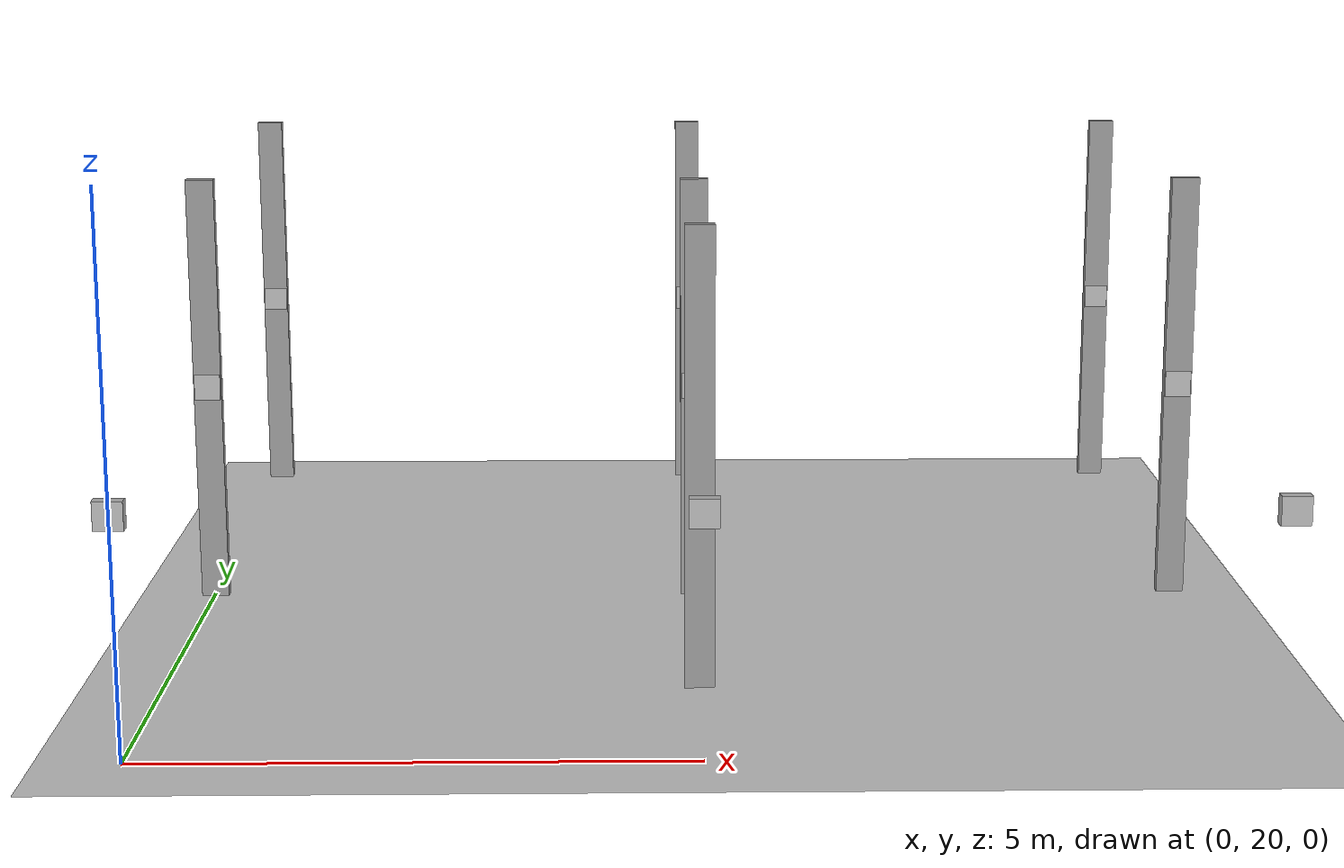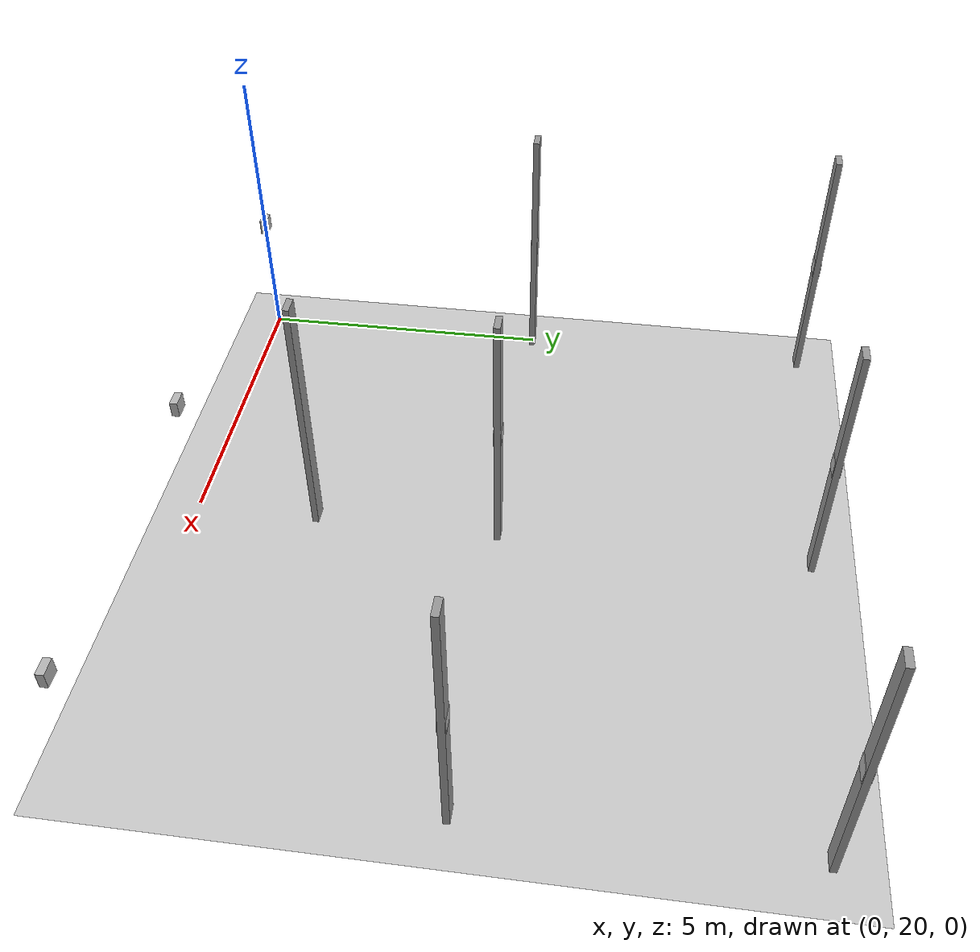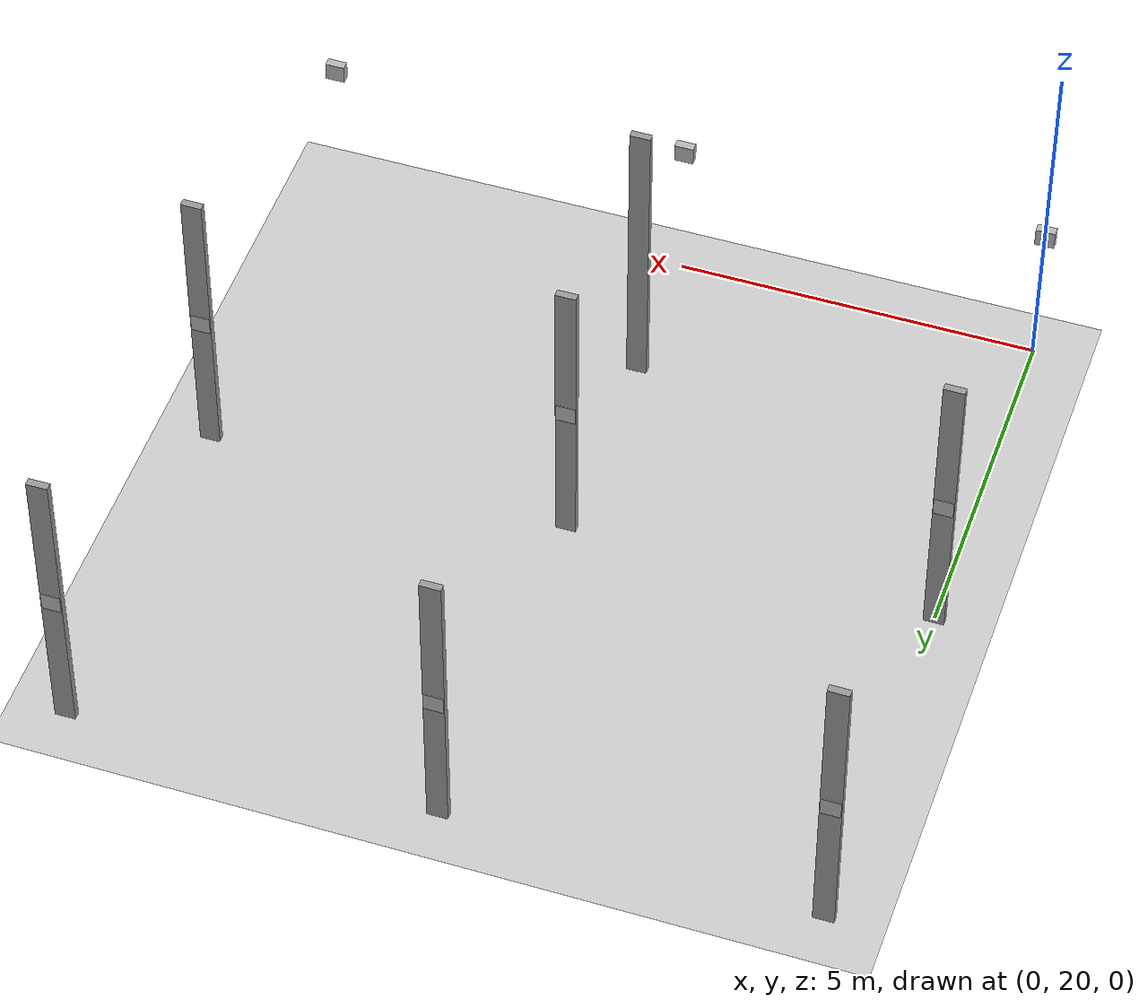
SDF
<sdf version="1.7">
 <world name="default">
  <model name="ground_plane">
   <static>1</static>
   <link name="link">
    <collision name="collision">
     <geometry><plane><normal>0 0 1</normal><size>150 150</size></plane></geometry>
     <surface><friction><ode><mu>100</mu><mu2>50</mu2></ode></friction></surface>
    </collision>
    <visual name="visual">
     <cast_shadows>0</cast_shadows>
     <geometry><plane><normal>0 0 1</normal><size>150 150</size></plane></geometry>
     <material>
      <script><uri>file://media/materials/scripts/gazebo.material</uri><name>Gazebo/Grey</name></script>
     </material>
    </visual>
   </link>
  </model>
  <model name="pilar_3">
   <link name="link_0">
    <inertial>
     <mass>0.325317</mass>
     <inertia>
      <ixx>0.52756</ixx>
      <ixy>0</ixy>
      <ixz>0</ixz>
      <iyy>0.527878</iyy>
      <iyz>0</iyz>
      <izz>0.00401833</izz>
     </inertia>
    </inertial>
    <pose>-0 0 3e-06 0 -0 0</pose>
    <visual name="visual">
     <geometry><box><size>0.2800 0.1 4.40362</size></box></geometry>
     <material>
      <lighting>1</lighting>
      <script><uri>file://media/materials/scripts/gazebo.material</uri><name>Gazebo/Grey</name></script>
      <shader type="pixel"/>
     </material>
    </visual>
    <collision name="collision">
     <geometry><box><size>0.282819 0.261223 4.40362</size></box></geometry>
     <surface>
      <friction>
       <ode><mu>100</mu><mu2>100</mu2><fdir1>0 0 0</fdir1><slip1>0</slip1><slip2>0</slip2></ode>
       <torsional>
        <coefficient>1</coefficient>
        <patch_radius>0</patch_radius>
        <surface_radius>0</surface_radius>
        <use_patch_radius>1</use_patch_radius>
        <ode><slip>0</slip></ode>
       </torsional>
      </friction>
      <bounce><restitution_coefficient>0</restitution_coefficient><threshold>1e+06</threshold></bounce>
      <contact>
       <collide_without_contact>0</collide_without_contact>
       <collide_without_contact_bitmask>1</collide_without_contact_bitmask>
       <collide_bitmask>1</collide_bitmask>
       <ode>
        <soft_cfm>0</soft_cfm>
        <soft_erp>0.2</soft_erp>
        <kp>1e+13</kp>
        <kd>1</kd>
        <max_vel>0.01</max_vel>
        <min_depth>0</min_depth>
       </ode>
       <bullet>
        <split_impulse>1</split_impulse>
        <split_impulse_penetration_threshold>-0.01</split_impulse_penetration_threshold>
        <soft_cfm>0</soft_cfm>
        <soft_erp>0.2</soft_erp>
        <kp>1e+13</kp>
        <kd>1</kd>
       </bullet>
      </contact>
     </surface>
    </collision>
   </link>
   <static>1</static>
   <pose>0.000 25 2.15473 0 -0 0</pose>
  </model>
  <model name="pilar_4">
   <link name="link_0">
    <inertial>
     <mass>0.325317</mass>
     <inertia>
      <ixx>0.52756</ixx>
      <ixy>0</ixy>
      <ixz>0</ixz>
      <iyy>0.527878</iyy>
      <iyz>0</iyz>
      <izz>0.00401833</izz>
     </inertia>
    </inertial>
    <pose>-0 0 3e-06 0 -0 0</pose>
    <visual name="visual">
     <geometry><box><size>0.2800 0.1 4.40362</size></box></geometry>
     <material>
      <lighting>1</lighting>
      <script><uri>file://media/materials/scripts/gazebo.material</uri><name>Gazebo/Grey</name></script>
      <shader type="pixel"/>
     </material>
    </visual>
    <collision name="collision">
     <geometry><box><size>0.282819 0.261223 4.40362</size></box></geometry>
     <surface>
      <friction>
       <ode><mu>100</mu><mu2>100</mu2><fdir1>0 0 0</fdir1><slip1>0</slip1><slip2>0</slip2></ode>
       <torsional>
        <coefficient>1</coefficient>
        <patch_radius>0</patch_radius>
        <surface_radius>0</surface_radius>
        <use_patch_radius>1</use_patch_radius>
        <ode><slip>0</slip></ode>
       </torsional>
      </friction>
      <bounce><restitution_coefficient>0</restitution_coefficient><threshold>1e+06</threshold></bounce>
      <contact>
       <collide_without_contact>0</collide_without_contact>
       <collide_without_contact_bitmask>1</collide_without_contact_bitmask>
       <collide_bitmask>1</collide_bitmask>
       <ode>
        <soft_cfm>0</soft_cfm>
        <soft_erp>0.2</soft_erp>
        <kp>1e+13</kp>
        <kd>1</kd>
        <max_vel>0.01</max_vel>
        <min_depth>0</min_depth>
       </ode>
       <bullet>
        <split_impulse>1</split_impulse>
        <split_impulse_penetration_threshold>-0.01</split_impulse_penetration_threshold>
        <soft_cfm>0</soft_cfm>
        <soft_erp>0.2</soft_erp>
        <kp>1e+13</kp>
        <kd>1</kd>
       </bullet>
      </contact>
     </surface>
    </collision>
   </link>
   <static>1</static>
   <pose>0.000 30 2.15473 0 -0 0</pose>
  </model>
  <model name="pilar_7">
   <link name="link_0">
    <inertial>
     <mass>0.325317</mass>
     <inertia>
      <ixx>0.52756</ixx>
      <ixy>0</ixy>
      <ixz>0</ixz>
      <iyy>0.527878</iyy>
      <iyz>0</iyz>
      <izz>0.00401833</izz>
     </inertia>
    </inertial>
    <pose>-0 0 3e-06 0 -0 0</pose>
    <visual name="visual">
     <geometry><box><size>0.2800 0.1 4.40362</size></box></geometry>
     <material>
      <lighting>1</lighting>
      <script><uri>file://media/materials/scripts/gazebo.material</uri><name>Gazebo/Grey</name></script>
      <shader type="pixel"/>
     </material>
    </visual>
    <collision name="collision">
     <geometry><box><size>0.282819 0.261223 4.40362</size></box></geometry>
     <surface>
      <friction>
       <ode><mu>100</mu><mu2>100</mu2><fdir1>0 0 0</fdir1><slip1>0</slip1><slip2>0</slip2></ode>
       <torsional>
        <coefficient>1</coefficient>
        <patch_radius>0</patch_radius>
        <surface_radius>0</surface_radius>
        <use_patch_radius>1</use_patch_radius>
        <ode><slip>0</slip></ode>
       </torsional>
      </friction>
      <bounce><restitution_coefficient>0</restitution_coefficient><threshold>1e+06</threshold></bounce>
      <contact>
       <collide_without_contact>0</collide_without_contact>
       <collide_without_contact_bitmask>1</collide_without_contact_bitmask>
       <collide_bitmask>1</collide_bitmask>
       <ode>
        <soft_cfm>0</soft_cfm>
        <soft_erp>0.2</soft_erp>
        <kp>1e+13</kp>
        <kd>1</kd>
        <max_vel>0.01</max_vel>
        <min_depth>0</min_depth>
       </ode>
       <bullet>
        <split_impulse>1</split_impulse>
        <split_impulse_penetration_threshold>-0.01</split_impulse_penetration_threshold>
        <soft_cfm>0</soft_cfm>
        <soft_erp>0.2</soft_erp>
        <kp>1e+13</kp>
        <kd>1</kd>
       </bullet>
      </contact>
     </surface>
    </collision>
   </link>
   <static>1</static>
   <pose>5.000 22 2.15473 0 -0 0</pose>
  </model>
  <model name="pilar_8">
   <link name="link_0">
    <inertial>
     <mass>0.325317</mass>
     <inertia>
      <ixx>0.52756</ixx>
      <ixy>0</ixy>
      <ixz>0</ixz>
      <iyy>0.527878</iyy>
      <iyz>0</iyz>
      <izz>0.00401833</izz>
     </inertia>
    </inertial>
    <pose>-0 0 3e-06 0 -0 0</pose>
    <visual name="visual">
     <geometry><box><size>0.2800 0.1 4.40362</size></box></geometry>
     <material>
      <lighting>1</lighting>
      <script><uri>file://media/materials/scripts/gazebo.material</uri><name>Gazebo/Grey</name></script>
      <shader type="pixel"/>
     </material>
    </visual>
    <collision name="collision">
     <geometry><box><size>0.282819 0.261223 4.40362</size></box></geometry>
     <surface>
      <friction>
       <ode><mu>100</mu><mu2>100</mu2><fdir1>0 0 0</fdir1><slip1>0</slip1><slip2>0</slip2></ode>
       <torsional>
        <coefficient>1</coefficient>
        <patch_radius>0</patch_radius>
        <surface_radius>0</surface_radius>
        <use_patch_radius>1</use_patch_radius>
        <ode><slip>0</slip></ode>
       </torsional>
      </friction>
      <bounce><restitution_coefficient>0</restitution_coefficient><threshold>1e+06</threshold></bounce>
      <contact>
       <collide_without_contact>0</collide_without_contact>
       <collide_without_contact_bitmask>1</collide_without_contact_bitmask>
       <collide_bitmask>1</collide_bitmask>
       <ode>
        <soft_cfm>0</soft_cfm>
        <soft_erp>0.2</soft_erp>
        <kp>1e+13</kp>
        <kd>1</kd>
        <max_vel>0.01</max_vel>
        <min_depth>0</min_depth>
       </ode>
       <bullet>
        <split_impulse>1</split_impulse>
        <split_impulse_penetration_threshold>-0.01</split_impulse_penetration_threshold>
        <soft_cfm>0</soft_cfm>
        <soft_erp>0.2</soft_erp>
        <kp>1e+13</kp>
        <kd>1</kd>
       </bullet>
      </contact>
     </surface>
    </collision>
   </link>
   <static>1</static>
   <pose>5.000 25 2.15473 0 -0 0</pose>
  </model>
  <model name="pilar_9">
   <link name="link_0">
    <inertial>
     <mass>0.325317</mass>
     <inertia>
      <ixx>0.52756</ixx>
      <ixy>0</ixy>
      <ixz>0</ixz>
      <iyy>0.527878</iyy>
      <iyz>0</iyz>
      <izz>0.00401833</izz>
     </inertia>
    </inertial>
    <pose>-0 0 3e-06 0 -0 0</pose>
    <visual name="visual">
     <geometry><box><size>0.2800 0.1 4.40362</size></box></geometry>
     <material>
      <lighting>1</lighting>
      <script><uri>file://media/materials/scripts/gazebo.material</uri><name>Gazebo/Grey</name></script>
      <shader type="pixel"/>
     </material>
    </visual>
    <collision name="collision">
     <geometry><box><size>0.282819 0.261223 4.40362</size></box></geometry>
     <surface>
      <friction>
       <ode><mu>100</mu><mu2>100</mu2><fdir1>0 0 0</fdir1><slip1>0</slip1><slip2>0</slip2></ode>
       <torsional>
        <coefficient>1</coefficient>
        <patch_radius>0</patch_radius>
        <surface_radius>0</surface_radius>
        <use_patch_radius>1</use_patch_radius>
        <ode><slip>0</slip></ode>
       </torsional>
      </friction>
      <bounce><restitution_coefficient>0</restitution_coefficient><threshold>1e+06</threshold></bounce>
      <contact>
       <collide_without_contact>0</collide_without_contact>
       <collide_without_contact_bitmask>1</collide_without_contact_bitmask>
       <collide_bitmask>1</collide_bitmask>
       <ode>
        <soft_cfm>0</soft_cfm>
        <soft_erp>0.2</soft_erp>
        <kp>1e+13</kp>
        <kd>1</kd>
        <max_vel>0.01</max_vel>
        <min_depth>0</min_depth>
       </ode>
       <bullet>
        <split_impulse>1</split_impulse>
        <split_impulse_penetration_threshold>-0.01</split_impulse_penetration_threshold>
        <soft_cfm>0</soft_cfm>
        <soft_erp>0.2</soft_erp>
        <kp>1e+13</kp>
        <kd>1</kd>
       </bullet>
      </contact>
     </surface>
    </collision>
   </link>
   <static>1</static>
   <pose>5.000 30 2.15473 0 -0 0</pose>
  </model>
  <model name="pilar_13">
   <link name="link_0">
    <inertial>
     <mass>0.325317</mass>
     <inertia>
      <ixx>0.52756</ixx>
      <ixy>0</ixy>
      <ixz>0</ixz>
      <iyy>0.527878</iyy>
      <iyz>0</iyz>
      <izz>0.00401833</izz>
     </inertia>
    </inertial>
    <pose>-0 0 3e-06 0 -0 0</pose>
    <visual name="visual">
     <geometry><box><size>0.2800 0.1 4.40362</size></box></geometry>
     <material>
      <lighting>1</lighting>
      <script><uri>file://media/materials/scripts/gazebo.material</uri><name>Gazebo/Grey</name></script>
      <shader type="pixel"/>
     </material>
    </visual>
    <collision name="collision">
     <geometry><box><size>0.282819 0.261223 4.40362</size></box></geometry>
     <surface>
      <friction>
       <ode><mu>100</mu><mu2>100</mu2><fdir1>0 0 0</fdir1><slip1>0</slip1><slip2>0</slip2></ode>
       <torsional>
        <coefficient>1</coefficient>
        <patch_radius>0</patch_radius>
        <surface_radius>0</surface_radius>
        <use_patch_radius>1</use_patch_radius>
        <ode><slip>0</slip></ode>
       </torsional>
      </friction>
      <bounce><restitution_coefficient>0</restitution_coefficient><threshold>1e+06</threshold></bounce>
      <contact>
       <collide_without_contact>0</collide_without_contact>
       <collide_without_contact_bitmask>1</collide_without_contact_bitmask>
       <collide_bitmask>1</collide_bitmask>
       <ode>
        <soft_cfm>0</soft_cfm>
        <soft_erp>0.2</soft_erp>
        <kp>1e+13</kp>
        <kd>1</kd>
        <max_vel>0.01</max_vel>
        <min_depth>0</min_depth>
       </ode>
       <bullet>
        <split_impulse>1</split_impulse>
        <split_impulse_penetration_threshold>-0.01</split_impulse_penetration_threshold>
        <soft_cfm>0</soft_cfm>
        <soft_erp>0.2</soft_erp>
        <kp>1e+13</kp>
        <kd>1</kd>
       </bullet>
      </contact>
     </surface>
    </collision>
   </link>
   <static>1</static>
   <pose>10.000 25 2.15473 0 -0 0</pose>
  </model>
  <model name="pilar_14">
   <link name="link_0">
    <inertial>
     <mass>0.325317</mass>
     <inertia>
      <ixx>0.52756</ixx>
      <ixy>0</ixy>
      <ixz>0</ixz>
      <iyy>0.527878</iyy>
      <iyz>0</iyz>
      <izz>0.00401833</izz>
     </inertia>
    </inertial>
    <pose>-0 0 3e-06 0 -0 0</pose>
    <visual name="visual">
     <geometry><box><size>0.2800 0.1 4.40362</size></box></geometry>
     <material>
      <lighting>1</lighting>
      <script><uri>file://media/materials/scripts/gazebo.material</uri><name>Gazebo/Grey</name></script>
      <shader type="pixel"/>
     </material>
    </visual>
    <collision name="collision">
     <geometry><box><size>0.282819 0.261223 4.40362</size></box></geometry>
     <surface>
      <friction>
       <ode><mu>100</mu><mu2>100</mu2><fdir1>0 0 0</fdir1><slip1>0</slip1><slip2>0</slip2></ode>
       <torsional>
        <coefficient>1</coefficient>
        <patch_radius>0</patch_radius>
        <surface_radius>0</surface_radius>
        <use_patch_radius>1</use_patch_radius>
        <ode><slip>0</slip></ode>
       </torsional>
      </friction>
      <bounce><restitution_coefficient>0</restitution_coefficient><threshold>1e+06</threshold></bounce>
      <contact>
       <collide_without_contact>0</collide_without_contact>
       <collide_without_contact_bitmask>1</collide_without_contact_bitmask>
       <collide_bitmask>1</collide_bitmask>
       <ode>
        <soft_cfm>0</soft_cfm>
        <soft_erp>0.2</soft_erp>
        <kp>1e+13</kp>
        <kd>1</kd>
        <max_vel>0.01</max_vel>
        <min_depth>0</min_depth>
       </ode>
       <bullet>
        <split_impulse>1</split_impulse>
        <split_impulse_penetration_threshold>-0.01</split_impulse_penetration_threshold>
        <soft_cfm>0</soft_cfm>
        <soft_erp>0.2</soft_erp>
        <kp>1e+13</kp>
        <kd>1</kd>
       </bullet>
      </contact>
     </surface>
    </collision>
   </link>
   <static>1</static>
   <pose>10.000 30 2.15473 0 -0 0</pose>
  </model>
  <model name="Apriltag36_11_00002">
   <link name="main">
    <visual name="main_Visual">
     <geometry><box><size>0.2625 0.12 0.2625</size></box></geometry>
     <material>
      <script>
       <uri>model://Apriltag36_11_00002/materials/scripts</uri>
       <uri>model://Apriltag36_11_00002/materials/textures</uri>
       <name>Apriltag36_11_00002</name>
      </script>
     </material>
    </visual>
   </link>
   <static>1</static>
   <pose>0.000 20.0 2.21569 0 -0 0</pose>
  </model>
  <model name="Apriltag36_11_00003">
   <link name="main">
    <visual name="main_Visual">
     <geometry><box><size>0.2625 0.12 0.2625</size></box></geometry>
     <material>
      <script>
       <uri>model://Apriltag36_11_00003/materials/scripts</uri>
       <uri>model://Apriltag36_11_00003/materials/textures</uri>
       <name>Apriltag36_11_00003</name>
      </script>
     </material>
    </visual>
   </link>
   <static>1</static>
   <pose>0.000 25.0 2.21569 0 -0 0</pose>
  </model>
  <model name="Apriltag36_11_00004">
   <link name="main">
    <visual name="main_Visual">
     <geometry><box><size>0.2625 0.12 0.2625</size></box></geometry>
     <material>
      <script>
       <uri>model://Apriltag36_11_00004/materials/scripts</uri>
       <uri>model://Apriltag36_11_00004/materials/textures</uri>
       <name>Apriltag36_11_00004</name>
      </script>
     </material>
    </visual>
   </link>
   <static>1</static>
   <pose>0.000 30.0 2.21569 0 -0 0</pose>
  </model>
  <model name="Apriltag36_11_00007">
   <link name="main">
    <visual name="main_Visual">
     <geometry><box><size>0.2625 0.12 0.2625</size></box></geometry>
     <material>
      <script>
       <uri>model://Apriltag36_11_00007/materials/scripts</uri>
       <uri>model://Apriltag36_11_00007/materials/textures</uri>
       <name>Apriltag36_11_00007</name>
      </script>
     </material>
    </visual>
   </link>
   <static>1</static>
   <pose>5.000 20.0 2.21569 0 -0 0</pose>
  </model>
  <model name="Apriltag36_11_00008">
   <link name="main">
    <visual name="main_Visual">
     <geometry><box><size>0.2625 0.12 0.2625</size></box></geometry>
     <material>
      <script>
       <uri>model://Apriltag36_11_00008/materials/scripts</uri>
       <uri>model://Apriltag36_11_00008/materials/textures</uri>
       <name>Apriltag36_11_00008</name>
      </script>
     </material>
    </visual>
   </link>
   <static>1</static>
   <pose>5.000 25.0 2.21569 0 -0 0</pose>
  </model>
  <model name="Apriltag36_11_00009">
   <link name="main">
    <visual name="main_Visual">
     <geometry><box><size>0.2625 0.12 0.2625</size></box></geometry>
     <material>
      <script>
       <uri>model://Apriltag36_11_00009/materials/scripts</uri>
       <uri>model://Apriltag36_11_00009/materials/textures</uri>
       <name>Apriltag36_11_00009</name>
      </script>
     </material>
    </visual>
   </link>
   <static>1</static>
   <pose>5.000 30.0 2.21569 0 -0 0</pose>
  </model>
  <model name="Apriltag36_11_00012">
   <link name="main">
    <visual name="main_Visual">
     <geometry><box><size>0.2625 0.12 0.2625</size></box></geometry>
     <material>
      <script>
       <uri>model://Apriltag36_11_00012/materials/scripts</uri>
       <uri>model://Apriltag36_11_00012/materials/textures</uri>
       <name>Apriltag36_11_00012</name>
      </script>
     </material>
    </visual>
   </link>
   <static>1</static>
   <pose>10.000 20.0 2.21569 0 -0 0</pose>
  </model>
  <model name="Apriltag36_11_00013">
   <link name="main">
    <visual name="main_Visual">
     <geometry><box><size>0.2625 0.12 0.2625</size></box></geometry>
     <material>
      <script>
       <uri>model://Apriltag36_11_00013/materials/scripts</uri>
       <uri>model://Apriltag36_11_00013/materials/textures</uri>
       <name>Apriltag36_11_00013</name>
      </script>
     </material>
    </visual>
   </link>
   <static>1</static>
   <pose>10.000 25.0 2.21569 0 -0 0</pose>
  </model>
  <model name="Apriltag36_11_00014">
   <link name="main">
    <visual name="main_Visual">
     <geometry><box><size>0.2625 0.12 0.2625</size></box></geometry>
     <material>
      <script>
       <uri>model://Apriltag36_11_00014/materials/scripts</uri>
       <uri>model://Apriltag36_11_00014/materials/textures</uri>
       <name>Apriltag36_11_00014</name>
      </script>
     </material>
    </visual>
   </link>
   <static>1</static>
   <pose>10.000 30.0 2.21569 0 -0 0</pose>
  </model>
 </world>
</sdf>
